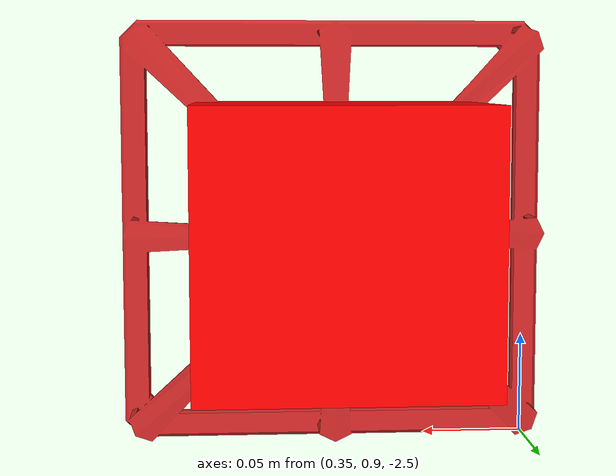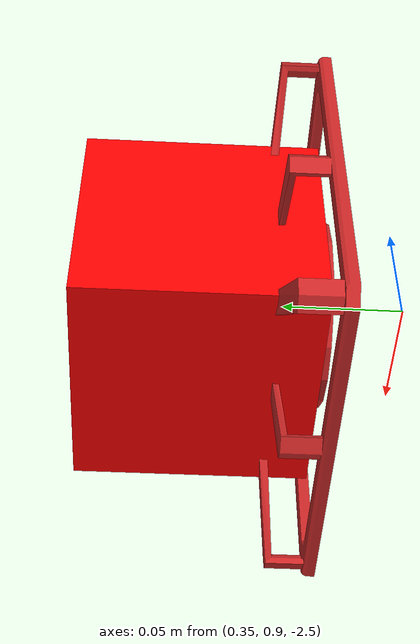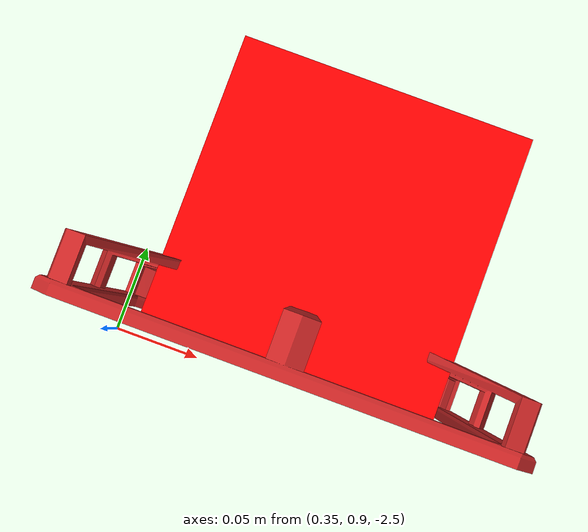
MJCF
<mujoco model="Mesh_8ec7412a">
  <compiler autolimits="true" boundmass="0.01" angle="radian"/>
  <default>
    <default class="/">
      <default class="__VISUAL_MJT__">
        <geom contype="0" conaffinity="0" group="0" mass="1e-08"/>
      </default>
      <default class="__STRUCTURAL_MJT__">
        <geom contype="8" conaffinity="15" group="4" friction="0.90000000000000002 0.90000000000000002 0.001" density="500" solref="0.025000000000000001 1" solimp="0.998 0.998 0.001"/>
      </default>
      <default class="__DYNAMIC_MJT__">
        <geom contype="1" conaffinity="15" group="4" friction="0.90000000000000002 0.90000000000000002 0.001" density="500" solref="0.025000000000000001 1" solimp="0.998 0.998 0.001"/>
      </default>
      <default class="__ARTICULABLE_DYNAMIC_MJT__">
        <geom contype="0" conaffinity="7" group="4" friction="0.90000000000000002 0.90000000000000002 0.001" density="500" solref="0.025000000000000001 1" solimp="0.998 0.998 0.001"/>
      </default>
    </default>
  </default>
  <asset>
    <texture name="HammeredMetal_AlbedoTransparency" type="2d" file="HammeredMetal_MetallicSmoothness.png"/>
    <material name="material_HammeredMetal_AlbedoTransparency" class="/" texture="HammeredMetal_AlbedoTransparency" specular="0.5" shininess="0.5" rgba="1 1 1 1"/>
    <mesh name="Mesh_8ec7412a_Mesh_8ec7412a" class="/" file="Mesh_8ec7412a_Mesh_8ec7412a/Mesh_8ec7412a_Mesh_8ec7412a.obj" scale="1 1 1" inertia="legacy"/>
  </asset>
  <worldbody>
    <body name="Mesh_8ec7412a">
      <body name="Mesh_8ec7412a_Mesh_8ec7412a" pos="-0 0 0" quat="1 0 0 0">
        <geom name="Mesh_8ec7412a_Mesh_8ec7412a" class="__VISUAL_MJT__" type="mesh" material="material_HammeredMetal_AlbedoTransparency" mesh="Mesh_8ec7412a_Mesh_8ec7412a"/>
        <site name="Mesh_8ec7412a_Mesh_8ec7412a_Receptacle_0" class="/" type="box" rgba="1 0 0 1" size="0.064072906970977783 0.061772003769874573 0.060816116631031036" pos="0.44905659556388855 0.98300904035568237 -2.3917529582977295" quat="1.4210854715201095e-14 -3.5762781180890202e-07 -0 -0.99999999999993605"/>
        <geom name="Mesh_8ec7412a_Mesh_8ec7412a_PrimitiveCollider_0" class="__DYNAMIC_MJT__" type="box" size="0.1012992262840271 0.10129908472299576 0.016042297706007957" rgba="0 1 0 1" pos="0.44999998807907104 0.93236714601516724 -2.3936998844146729" quat="-2.5288108395991971e-07 -2.5288105553820975e-07 0.70710684079114572 -0.70710672158185406"/>
      </body>
    </body>
  </worldbody>
</mujoco>
